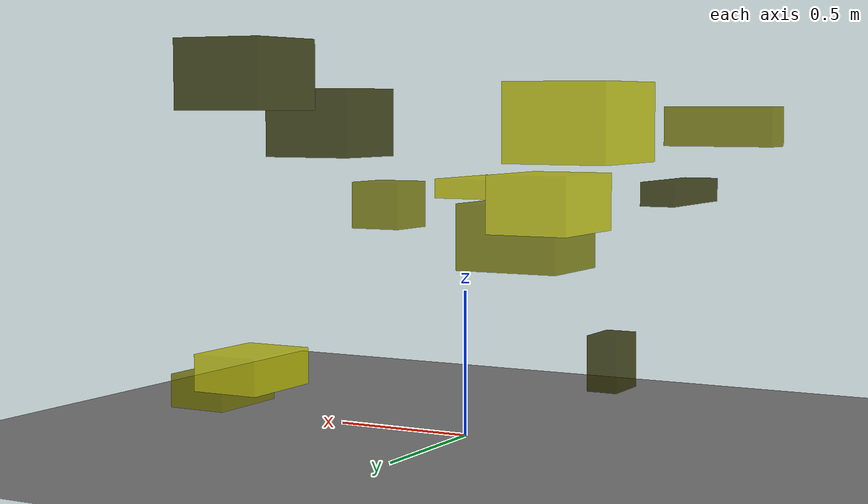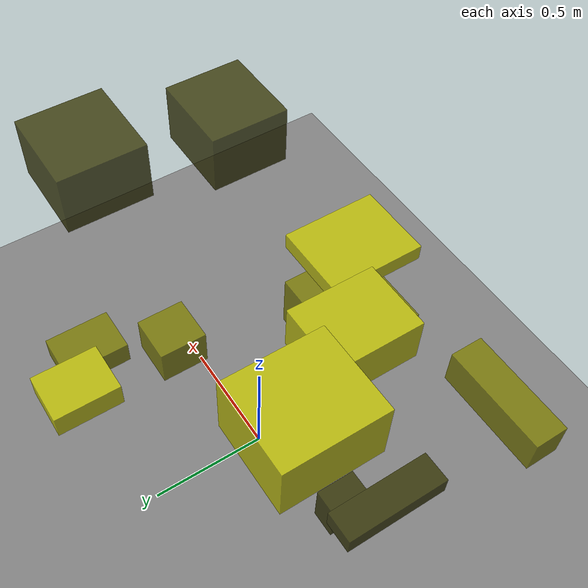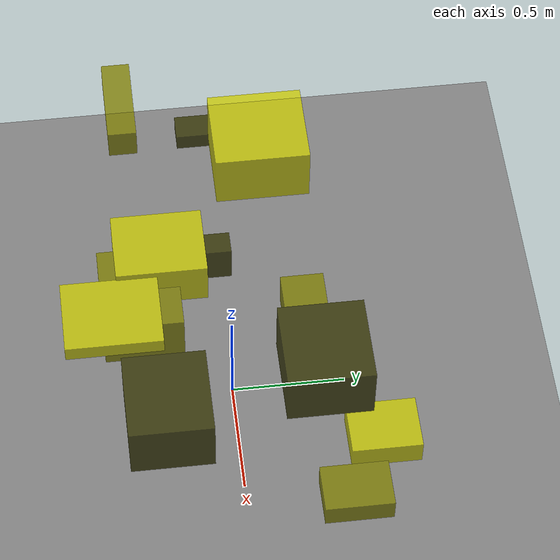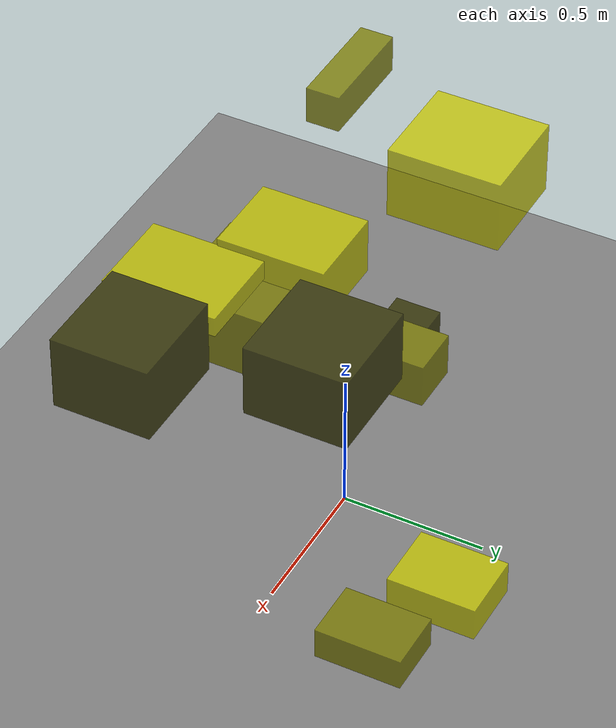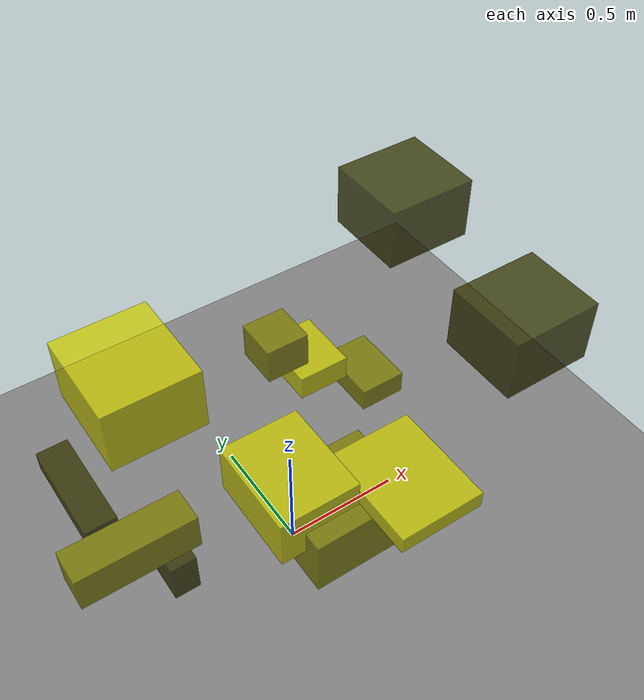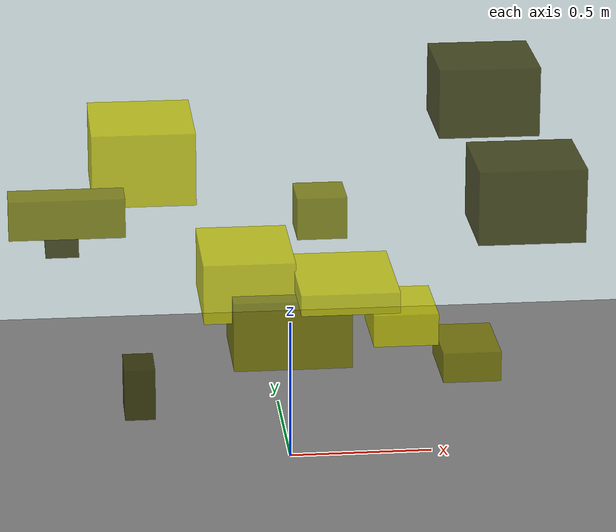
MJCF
<?xml version="1.0"?>
<mujoco model="obstacle_scene">
  <compiler angle="radian" coordinate="local"/>
  <option timestep="0.001" gravity="0 0 -9.81"/>

  <asset>
    <material name="obstacle_mat" rgba="0.8 0.8 0.0 0.8"/>
    <material name="ground_mat" rgba="0.5 0.5 0.5 1"/>
  </asset>

  <worldbody>
    <!-- Ground plane -->
    <geom name="ground" type="plane" size="3 3 0.1" material="ground_mat"/>

    <!-- Obstacles -->
    <body name="obstacle_0" pos="-0.530892 -0.030731 0.292854">
      <geom name="obs_0" type="box" size="0.052547 0.080743 0.091751" rgba="0.2 0.2 0.0 0.8"/>
    </body>
    <body name="obstacle_1" pos="-0.777347 -0.394678 1.062001">
      <geom name="obs_1" type="box" size="0.191287 0.059209 0.066935" rgba="0.5 0.5 0.0 0.8"/>
    </body>
    <body name="obstacle_2" pos="0.132066 -0.508558 0.830846">
      <geom name="obs_2" type="box" size="0.162287 0.202116 0.035370" rgba="0.8 0.8 0.0 0.8"/>
    </body>
    <body name="obstacle_3" pos="-0.788291 0.032478 0.860429">
      <geom name="obs_3" type="box" size="0.056033 0.189350 0.037248" rgba="0.2 0.2 0.0 0.8"/>
    </body>
    <body name="obstacle_4" pos="0.686883 0.454083 0.184118">
      <geom name="obs_4" type="box" size="0.104753 0.146868 0.055980" rgba="0.5 0.5 0.0 0.8"/>
    </body>
    <body name="obstacle_5" pos="0.463811 0.595687 0.280413">
      <geom name="obs_5" type="box" size="0.117936 0.149592 0.059918" rgba="0.8 0.8 0.0 0.8"/>
    </body>
    <body name="obstacle_6" pos="0.703064 0.287613 1.238389">
      <geom name="obs_6" type="box" size="0.174832 0.167814 0.122661" rgba="0.2 0.2 0.0 0.8"/>
    </body>
    <body name="obstacle_7" pos="0.130288 0.286360 0.808307">
      <geom name="obs_7" type="box" size="0.087358 0.088592 0.075443" rgba="0.5 0.5 0.0 0.8"/>
    </body>
    <body name="obstacle_8" pos="-0.179273 -0.286008 0.791030">
      <geom name="obs_8" type="box" size="0.152926 0.190250 0.102736" rgba="0.8 0.8 0.0 0.8"/>
    </body>
    <body name="obstacle_9" pos="0.760180 -0.327573 1.067588">
      <geom name="obs_9" type="box" size="0.179646 0.164237 0.127337" rgba="0.2 0.2 0.0 0.8"/>
    </body>
    <body name="obstacle_10" pos="-0.041129 -0.380383 0.664301">
      <geom name="obs_10" type="box" size="0.197226 0.166957 0.119852" rgba="0.5 0.5 0.0 0.8"/>
    </body>
    <body name="obstacle_11" pos="-0.501202 0.167777 1.079227">
      <geom name="obs_11" type="box" size="0.176717 0.194693 0.127815" rgba="0.8 0.8 0.0 0.8"/>
    </body>
  </worldbody>
</mujoco>
